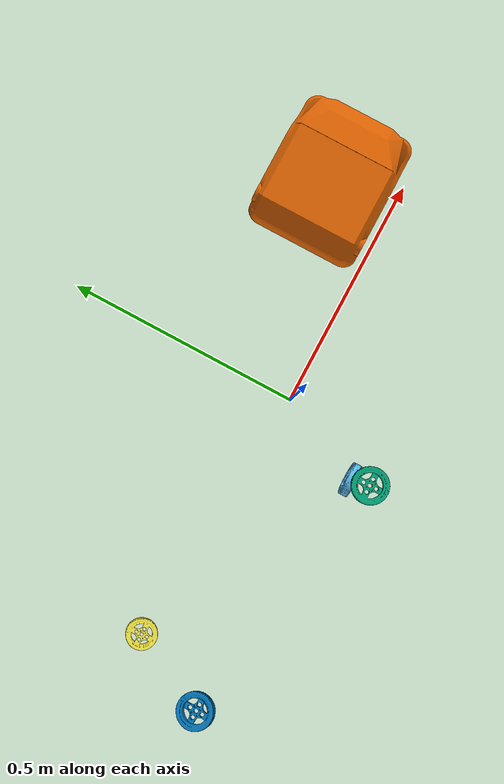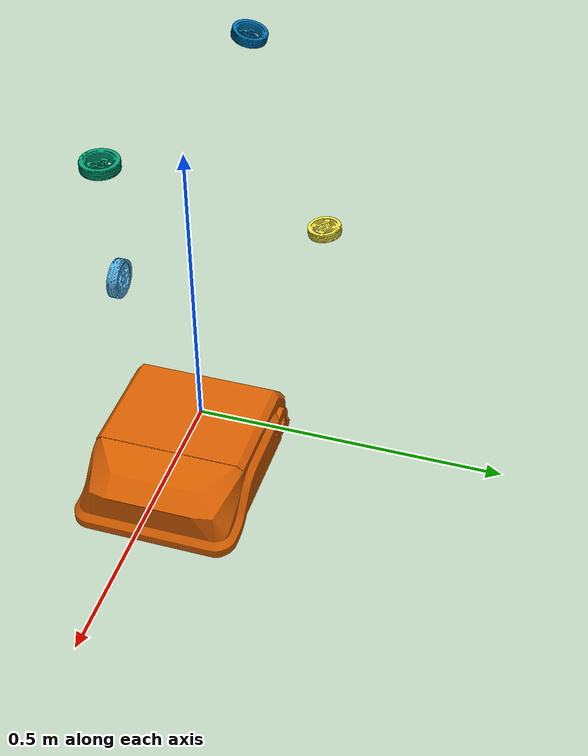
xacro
<?xml version='1.0' encoding='utf-8'?>

<robot name="slambot" xmlns:xacro="https://www.ros.org/wiki/xacro">

    <link name="base_print">
        <inertial>
        <origin xyz="0.0 0.0 0.0" rpy="0.0 0.0 0.0"/>
        <mass value="0.01"/>
        <inertia ixx="1e-6" iyy="1e-6" izz="1e-6" ixy="0.0" iyz="0.0" ixz="0.0"/>
        </inertial>
    </link>

    <link name="wheel_right_1">
        <inertial>
            <origin xyz="1.5076067352657318e-05 7.3241169928195405e-06 0.019818687687401495" rpy="0.0 -0.0 0.0" />
            <mass value="1.645228262952039" />
            <inertia ixx="0.002148300197711256" iyy="0.0021282612407535" izz="0.0038296195086362714" ixy="1.6867837979647748e-06" iyz="1.3110010486927504e-07" ixz="3.7405649806754315e-07" />
        </inertial>
        <visual name="wheel_left_1_visual">
            <origin xyz="-0.0019308710066898093 0.12391728320851446 0.06879633311020772" rpy="-1.8163420373652984e-16 -1.5707963184678997 0" />
            <geometry>
                <mesh filename="package://slambot_description/meshes/wheel_left_1.stl" scale="0.001 0.001 0.001" />
            </geometry>
        </visual>
        <collision name="wheel_left_1_collision">
            <origin xyz="-0.0019308710066898093 0.12391728320851446 0.06879633311020772" rpy="-1.8163420373652984e-16 -1.5707963184678997 0" />
            <geometry>
                <mesh filename="package://slambot_description/meshes/wheel_left_1.stl" scale="0.001 0.001 0.001" />
            </geometry>
        </collision>
    </link>

    <link name="wheel_right_2">
        <inertial>
            <origin xyz="7.317228266963127e-06 -1.5076636333768434e-05 0.019818682761753442" rpy="0.0 3.877409121342317e-26 0.0" />
            <mass value="1.645228262952039" />
            <inertia ixx="0.002128261240751355" iyy="0.0021483001977119186" izz="0.0038296195086379692" ixy="-1.686783794975277e-06" iyz="-3.740580174670456e-07" ixz="1.310860182532444e-07" />
        </inertial>
        <visual name="wheel_left_1_visual">
            <origin xyz="0.12391727591431635 0.0019308703938564786 0.06879632921211794" rpy="-1.5707963267948968 -1.5707963267948966 0" />
            <geometry>
                <mesh filename="package://slambot_description/meshes/wheel_left_1.stl" scale="0.001 0.001 0.001" />
            </geometry>
        </visual>
        <collision name="wheel_left_1_collision">
            <origin xyz="0.12391727591431635 0.0019308703938564786 0.06879632921211794" rpy="-1.5707963267948968 -1.5707963267948966 0" />
            <geometry>
                <mesh filename="package://slambot_description/meshes/wheel_left_1.stl" scale="0.001 0.001 0.001" />
            </geometry>
        </collision>
    </link>

    <link name="wheel_left_1">
        <inertial>
            <origin xyz="-5.660306794741388e-06 1.5778119993448138e-05 0.019818682132024642" rpy="0.0 -0.0 0.0" />
            <mass value="1.645228262952039" />
            <inertia ixx="0.002128132283423248" iyy="0.002148429155046247" izz="0.003829619508631742" ixy="4.944079624738876e-07" iyz="3.859982736324763e-07" ixz="-9.010409399851094e-08" />
        </inertial>
        <visual name="wheel_left_1_visual">
            <origin xyz="-0.12340647919376618 0.011404477249411632 0.0687963285985932" rpy="1.4630634883227862 -1.5707963184678988 0" />
            <geometry>
                <mesh filename="package://slambot_description/meshes/wheel_left_1.stl" scale="0.001 0.001 0.001" />
            </geometry>
        </visual>
        <collision name="wheel_left_1_collision">
            <origin xyz="-0.12340647919376618 0.011404477249411632 0.0687963285985932" rpy="1.4630634883227862 -1.5707963184678988 0" />
            <geometry>
                <mesh filename="package://slambot_description/meshes/wheel_left_1.stl" scale="0.001 0.001 0.001" />
            </geometry>
        </collision>
    </link>

    <link name="wheel_left_2">
        <inertial>
            <origin xyz="1.0787042592221852e-05 -1.2824472276742327e-05 0.01981868828934431" rpy="0.0 -0.0 0.0" />
            <mass value="1.645228262952039" />
            <inertia ixx="0.0021302648953452352" iyy="0.002146296543111558" izz="0.003829619508644364" ixy="-6.243537138013282e-06" iyz="-3.3053695549633416e-07" ixz="2.1871792152752811e-07" />
        </inertial>
        <visual name="wheel_left_1_visual">
            <origin xyz="0.11966893182512152 0.03222679339539846 0.06879633472309277" rpy="-1.3233181107454526 -1.5707963182560236 0" />
            <geometry>
                <mesh filename="package://slambot_description/meshes/wheel_left_1.stl" scale="0.001 0.001 0.001" />
            </geometry>
        </visual>
        <collision name="wheel_left_1_collision">
            <origin xyz="0.11966893182512152 0.03222679339539846 0.06879633472309277" rpy="-1.3233181107454526 -1.5707963182560236 0" />
            <geometry>
                <mesh filename="package://slambot_description/meshes/wheel_left_1.stl" scale="0.001 0.001 0.001" />
            </geometry>
        </collision>
    </link>

    <link name="base_link">
        <inertial>
            <origin xyz="-0.3285374521140141 -0.04261270124499695 0.22421992343670252" rpy="0.0 0.0 0.0" />
            <mass value="12.035104403469955" />
            <inertia ixx="0.09987564319953268" iyy="0.0701904372422229" izz="0.1530253149007591" ixy="-0.0002232775660089192" iyz="-0.007924216076049165" ixz="0.0003881066034801177" />
        </inertial>
        <visual name="base_link_visual">
            <origin xyz="0.0 0.0 0.0" rpy="0.0 0.0 0.0" />
            <geometry>
                <mesh filename="package://slambot_description/meshes/base_link.stl" scale="0.001 0.001 0.001" />
            </geometry>
        </visual>
        <collision name="base_link_collision">
            <origin xyz="0.0 0.0 0.0" rpy="0.0 0.0 0.0" />
            <geometry>
                <mesh filename="package://slambot_description/meshes/base_link.stl" scale="0.001 0.001 0.001" />
            </geometry>
        </collision>
    </link>

    <joint name="base_joint" type="fixed">
        <parent link="base_print"/>
        <child link="base_link"/>
        <origin xyz="0.0 0.0 0.0" rpy="0.0 0.0 0.0"/>
    </joint>
    <joint name="right_front_wheel" type="continuous">
        <origin xyz="-0.19344651609983868 0.03729851981785937 0.18644566903411788" rpy="-3.141592653589793 -1.5707963267948957 0" />
        <parent link="base_link" />
        <child link="wheel_right_1" />
        <axis xyz="0.0 -7.924861755898593e-33 1.0" />
    </joint>
    <joint name="right_rear_wheel" type="continuous">
        <origin xyz="-0.1934465160998387 -0.16295148018214062 0.18644566903411788" rpy="-3.141592653589793 -1.5707963267948957 0" />
        <parent link="base_link" />
        <child link="wheel_right_2" />
        <axis xyz="0 0 -1" />  <!-- Fixed -->
    </joint>
    <joint name="left_front_wheel" type="continuous">
        <origin xyz="-0.4651465160998386 0.036798519817859365 0.18644566903411794" rpy="3.4694469519536536e-17 -1.5707963267948957 0" />
        <parent link="base_link" />
        <child link="wheel_left_1" />
        <axis xyz="0.0 -7.924861755898593e-33 1.0" />
    </joint>
    <joint name="left_rear_wheel" type="continuous">
        <origin xyz="-0.46514651609983865 -0.1632014801821406 0.18744566903411794" rpy="3.4694469519536536e-17 -1.5707963267948957 0" />
        <parent link="base_link" />
        <child link="wheel_left_2" />
        <axis xyz="0.0 -7.924861755898593e-33 1.0" />
    </joint>

    <gazebo reference="base_link">
        <mu1>10</mu1>
        <mu2>10</mu2>
        <self_collide>true</self_collide>
        <fdir1>1 0 0</fdir1>
        <kp>1000000</kp>
        <kd>10.0</kd>
        <maxVel>0.1</maxVel>
    </gazebo>

      <gazebo reference="wheel_right_1">
        <mu1>0.5</mu1>
        <mu2>1</mu2>
        <self_collide>true</self_collide>
        <fdir1>1 0 0</fdir1>
        <kp>10</kp>
        <kd>10.0</kd>
        <maxVel>1</maxVel>
    </gazebo>

      <gazebo reference="wheel_right_2">
        <mu1>0.5</mu1>
        <mu2>1</mu2>
        <self_collide>true</self_collide>
        <fdir1>1 0 0</fdir1>
        <kp>10</kp>
        <kd>10.0</kd>
        <maxVel>1</maxVel>
    </gazebo>

      <gazebo reference="wheel_left_1">
        <mu1>0.5</mu1>
        <mu2>1</mu2>
        <self_collide>true</self_collide>
        <fdir1>1 0 0</fdir1>
        <kp>10</kp>
        <kd>10.0</kd>
        <maxVel>1</maxVel>
    </gazebo>

      <gazebo reference="wheel_left_2">
        <mu1>0.5</mu1>
        <mu2>1</mu2>
        <self_collide>true</self_collide>
        <fdir1>1 0 0</fdir1>
        <kp>10</kp>
        <kd>10.0</kd>
        <maxVel>1</maxVel>
    </gazebo>

    <gazebo>
        <plugin name="diff_drive" filename="libgazebo_ros_diff_drive.so">
            <left_joint>left_rear_wheel</left_joint>
            <right_joint>right_rear_wheel</right_joint>

            <wheel_separation>0.198</wheel_separation>
            <wheel_diameter>0.12</wheel_diameter>

            <max_wheel_torque>200</max_wheel_torque>
            <max_wheel_acceleration>10.0</max_wheel_acceleration>

            <command_topic>cmd_vel</command_topic>

            <publish_odom>true</publish_odom>
            <publish_odom_tf>true</publish_odom_tf>
            <publish_wheel_tf>true</publish_wheel_tf>

            <odometry_topic>odom</odometry_topic>

            <odometry_frame>odom</odometry_frame>
            <robot_base_frame>base_link</robot_base_frame>
        </plugin>
    </gazebo>

</robot>
